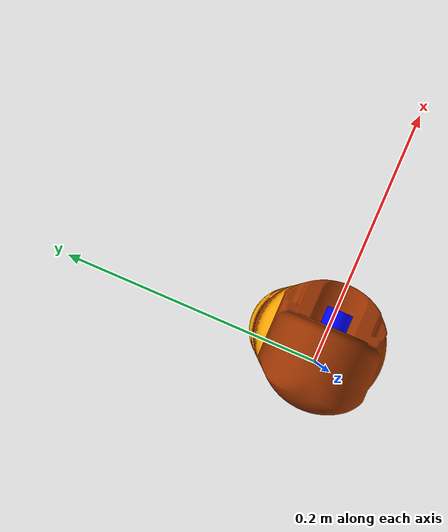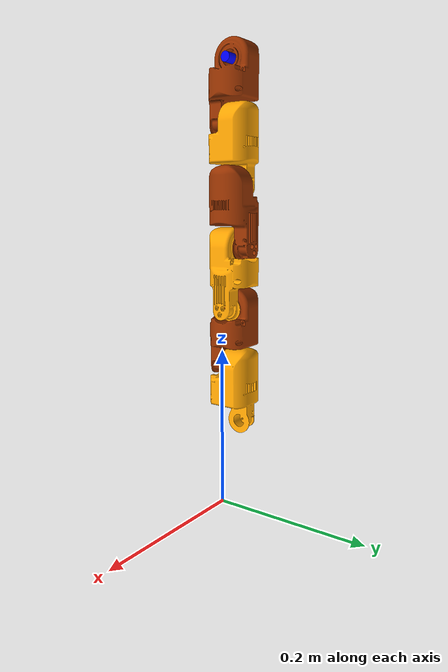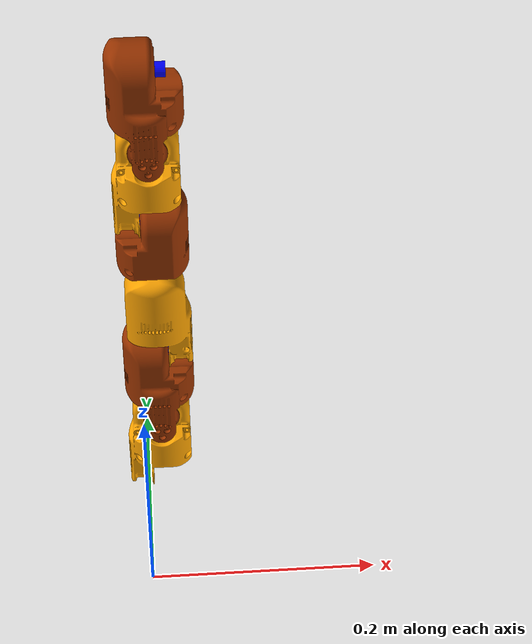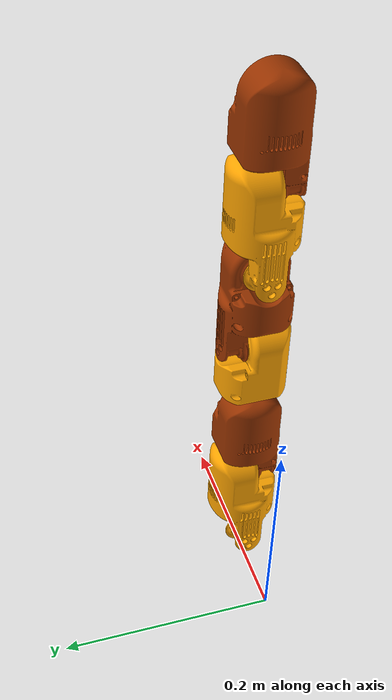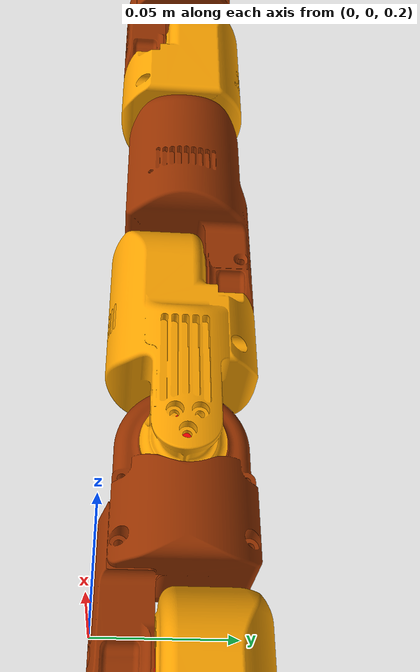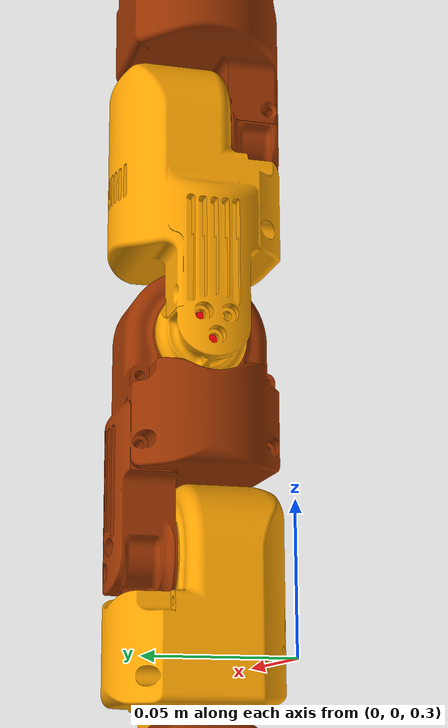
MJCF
<mujoco>
  <compiler angle="radian"/>
  <asset>
    <mesh name="J_mesh" file="anchor_scenes/snake_mesh/J_Mesh.STL" scale="0.001 0.001 0.001"/>
    <material name="yellow_light" rgba="1 0.647 0 1"/>
    <material name="yellow_dark" rgba="0.6 0.2 0 1"/>
    <material name="blue" rgba="0 0 1 1"/>
    <material name="red" rgba="1 0 0 1"/>
  </asset>

  <worldbody>
    <light pos="0 0 1.5" dir="0 0 -1" directional="true"/>

    <body name="mod_head_body" pos="0.04 0 0.1" euler="0 -1.57079633 0">
      <joint name="mod_head_freejoint" type="free" damping="5.0"/>
      <inertial pos="0 0 0" mass="0.250" diaginertia="0.0003126 0.0003126 0.0001051"/>
      <geom name="mesh_head" type="mesh" mesh="J_mesh" pos="0 0 0" material="yellow_light" contype="2" conaffinity="1" group="0"/>

      <body name="mod_head_out" pos="0.08747400 0.02050000 0.02509800" euler="-1.57079633 0.00000000 0.00000000">
        <inertial pos="0 0 0" mass="0.01" diaginertia="0.0001 0.0001 0.0001"/>

        <body name="mod_0_in" pos="0 0 0" euler="3.14159265 0.00000000 -1.57079633">
          <joint name="joint_0" type="hinge" pos="0 0 0" axis="0 0 1" range="-1.5708 1.5708" limited="true" damping="0.1" frictionloss="0.2"/>
          <inertial pos="0 0 0" mass="0.01" diaginertia="0.0001 0.0001 0.0001"/>
          <geom name="geom_0_in" type="cylinder" size="0.006 0.01" pos="0 0 0" material="red" contype="1" conaffinity="4" group="1"/>

          <body name="mod_0_body" pos="0.02945300 -0.01545000 -0.03409800" euler="0.00000000 0.00000000 1.57079633">
            <inertial pos="0 0 0" mass="0.250" diaginertia="0.0003126 0.0003126 0.0001051"/>
            <geom name="mesh_0" type="mesh" mesh="J_mesh" pos="0 0 0" material="yellow_dark" contype="2" conaffinity="1" group="0"/>

            <body name="mod_0_out" pos="0.08747400 0.02050000 0.02509800" euler="1.57079633 0.00000000 0.00000000">
              <inertial pos="0 0 0" mass="0.01" diaginertia="0.0001 0.0001 0.0001"/>
              <geom name="geom_0_out" type="cylinder" size="0.006 0.0075" pos="0 0 0" material="blue" contype="1" conaffinity="4" group="1"/>

              <body name="mod_1_in" pos="0 0 0" euler="3.14159265 0.00000000 1.57079633">
                <joint name="joint_1" type="hinge" pos="0 0 0" axis="0 0 1" range="-1.5708 1.5708" limited="true" damping="0.1" frictionloss="0.2"/>
                <inertial pos="0 0 0" mass="0.01" diaginertia="0.0001 0.0001 0.0001"/>
                <geom name="geom_1_in" type="cylinder" size="0.006 0.01" pos="0 0 0" material="red" contype="1" conaffinity="4" group="1"/>

                <body name="mod_1_body" pos="0.02945300 0.01545000 0.03409800" euler="3.14159265 0.00000000 1.57079633">
                  <inertial pos="0 0 0" mass="0.250" diaginertia="0.0003126 0.0003126 0.0001051"/>
                  <geom name="mesh_1" type="mesh" mesh="J_mesh" pos="0 0 0" material="yellow_light" contype="2" conaffinity="1" group="0"/>

                  <body name="mod_1_out" pos="0.08747400 0.02050000 0.02509800" euler="1.57079633 0.00000000 0.00000000">
                    <inertial pos="0 0 0" mass="0.01" diaginertia="0.0001 0.0001 0.0001"/>
                    <geom name="geom_1_out" type="cylinder" size="0.006 0.0075" pos="0 0 0" material="blue" contype="1" conaffinity="4" group="1"/>

                    <body name="mod_2_in" pos="0 0 0" euler="3.14159265 0.00000000 1.57079633">
                      <joint name="joint_2" type="hinge" pos="0 0 0" axis="0 0 1" range="-1.5708 1.5708" limited="true" damping="0.1" frictionloss="0.2"/>
                      <inertial pos="0 0 0" mass="0.01" diaginertia="0.0001 0.0001 0.0001"/>
                      <geom name="geom_2_in" type="cylinder" size="0.006 0.01" pos="0 0 0" material="red" contype="1" conaffinity="4" group="1"/>

                      <body name="mod_2_body" pos="0.02945300 0.01545000 0.03409800" euler="3.14159265 0.00000000 1.57079633">
                        <inertial pos="0 0 0" mass="0.250" diaginertia="0.0003126 0.0003126 0.0001051"/>
                        <geom name="mesh_2" type="mesh" mesh="J_mesh" pos="0 0 0" material="yellow_dark" contype="2" conaffinity="1" group="0"/>

                        <body name="mod_2_out" pos="0.08747400 0.02050000 0.02509800" euler="1.57079633 0.00000000 0.00000000">
                          <inertial pos="0 0 0" mass="0.01" diaginertia="0.0001 0.0001 0.0001"/>
                          <geom name="geom_2_out" type="cylinder" size="0.006 0.0075" pos="0 0 0" material="blue" contype="1" conaffinity="4" group="1"/>

                          <body name="mod_3_in" pos="0 0 0" euler="3.14159265 0.00000000 1.57079633">
                            <joint name="joint_3" type="hinge" pos="0 0 0" axis="0 0 1" range="-1.5708 1.5708" limited="true" damping="0.1" frictionloss="0.2"/>
                            <inertial pos="0 0 0" mass="0.01" diaginertia="0.0001 0.0001 0.0001"/>
                            <geom name="geom_3_in" type="cylinder" size="0.006 0.01" pos="0 0 0" material="red" contype="1" conaffinity="4" group="1"/>

                            <body name="mod_3_body" pos="0.02945300 0.01545000 0.03409800" euler="3.14159265 0.00000000 1.57079633">
                              <inertial pos="0 0 0" mass="0.250" diaginertia="0.0003126 0.0003126 0.0001051"/>
                              <geom name="mesh_3" type="mesh" mesh="J_mesh" pos="0 0 0" material="yellow_light" contype="2" conaffinity="1" group="0"/>

                              <body name="mod_3_out" pos="0.08747400 0.02050000 0.02509800" euler="1.57079633 0.00000000 0.00000000">
                                <inertial pos="0 0 0" mass="0.01" diaginertia="0.0001 0.0001 0.0001"/>
                                <geom name="geom_3_out" type="cylinder" size="0.006 0.0075" pos="0 0 0" material="blue" contype="1" conaffinity="4" group="1"/>

                                <body name="mod_4_in" pos="0 0 0" euler="3.14159265 0.00000000 1.57079633">
                                  <joint name="joint_4" type="hinge" pos="0 0 0" axis="0 0 1" range="-1.5708 1.5708" limited="true" damping="0.1" frictionloss="0.2"/>
                                  <inertial pos="0 0 0" mass="0.01" diaginertia="0.0001 0.0001 0.0001"/>
                                  <geom name="geom_4_in" type="cylinder" size="0.006 0.01" pos="0 0 0" material="red" contype="1" conaffinity="4" group="1"/>

                                  <body name="mod_4_body" pos="0.02945300 0.01545000 0.03409800" euler="3.14159265 0.00000000 1.57079633">
                                    <inertial pos="0 0 0" mass="0.250" diaginertia="0.0003126 0.0003126 0.0001051"/>
                                    <geom name="mesh_4" type="mesh" mesh="J_mesh" pos="0 0 0" material="yellow_dark" contype="2" conaffinity="1" group="0"/>

                                    <body name="mod_4_out" pos="0.08747400 0.02050000 0.02509800" euler="1.57079633 0.00000000 0.00000000">
                                      <inertial pos="0 0 0" mass="0.01" diaginertia="0.0001 0.0001 0.0001"/>
                                      <geom name="geom_4_out" type="cylinder" size="0.006 0.0075" pos="0 0 0" material="blue" contype="1" conaffinity="4" group="1"/>

                                    </body>
                                  </body>
                                </body>
                              </body>
                            </body>
                          </body>
                        </body>
                      </body>
                    </body>
                  </body>
                </body>
              </body>
            </body>
          </body>
        </body>
      </body>
    </body>

  </worldbody>

  <actuator>
    <position name="servo_0_pos" joint="joint_0" kp="10" ctrlrange="-1.5708 1.5708" ctrllimited="true" forcerange="-10.0 10.0" forcelimited="true"/>
    <position name="servo_1_pos" joint="joint_1" kp="10" ctrlrange="-1.5708 1.5708" ctrllimited="true" forcerange="-10.0 10.0" forcelimited="true"/>
    <position name="servo_2_pos" joint="joint_2" kp="10" ctrlrange="-1.5708 1.5708" ctrllimited="true" forcerange="-10.0 10.0" forcelimited="true"/>
    <position name="servo_3_pos" joint="joint_3" kp="10" ctrlrange="-1.5708 1.5708" ctrllimited="true" forcerange="-10.0 10.0" forcelimited="true"/>
    <position name="servo_4_pos" joint="joint_4" kp="10" ctrlrange="-1.5708 1.5708" ctrllimited="true" forcerange="-10.0 10.0" forcelimited="true"/>
    </actuator>
</mujoco>
